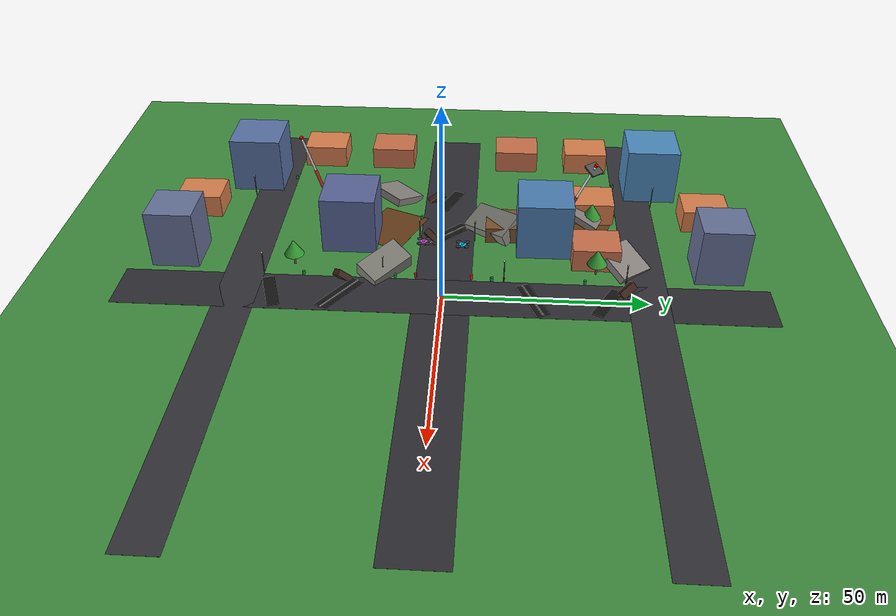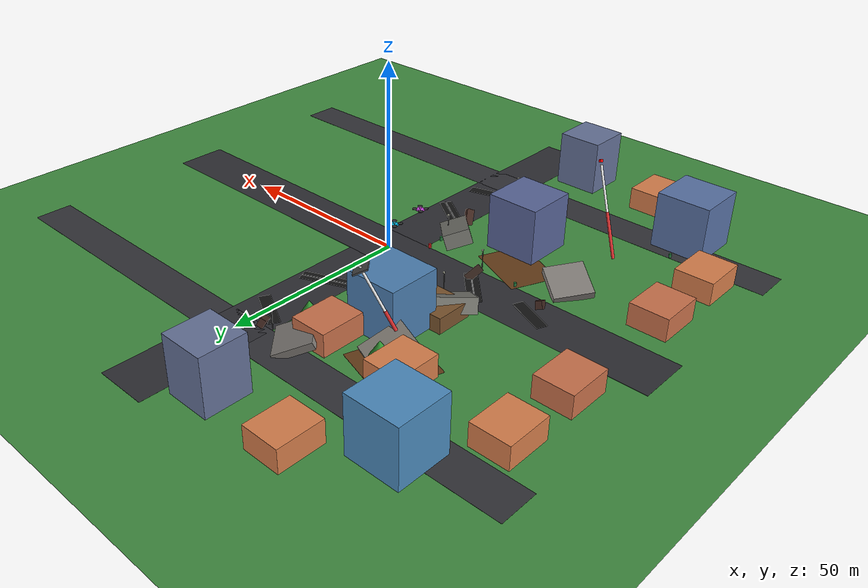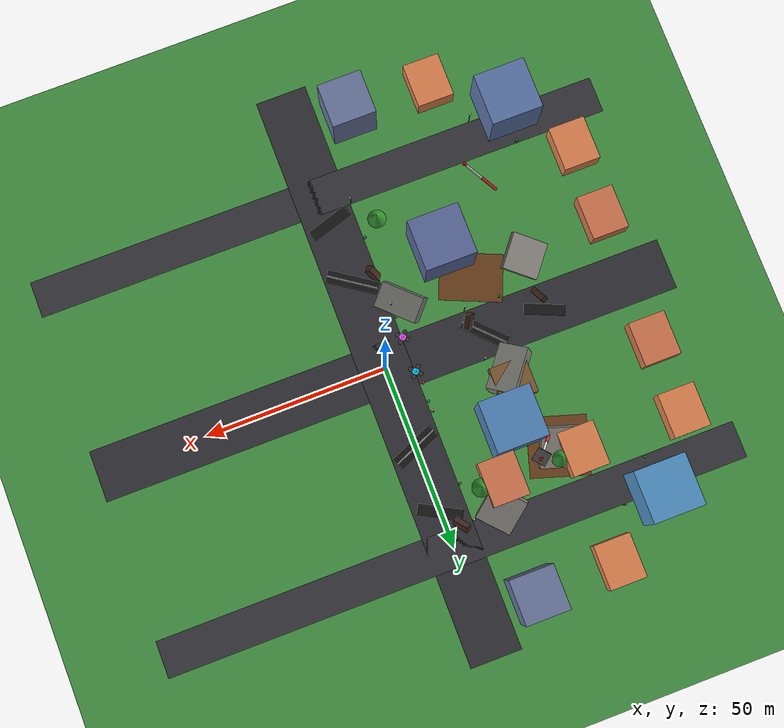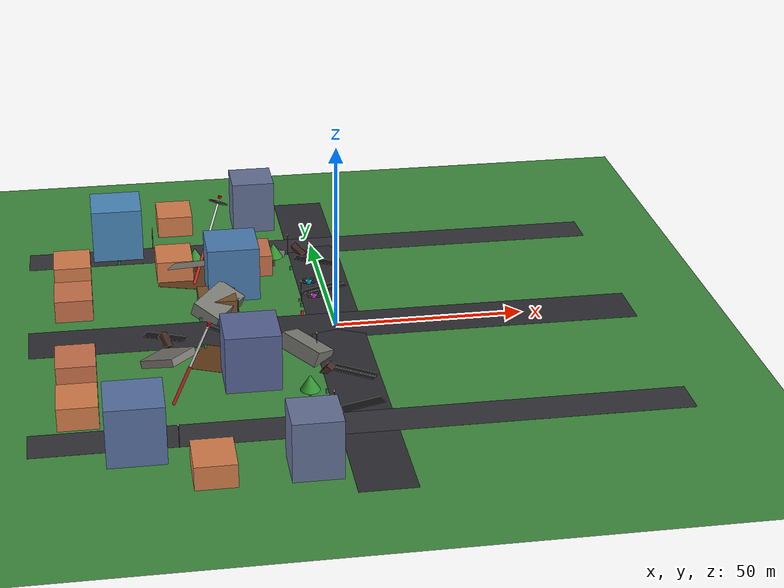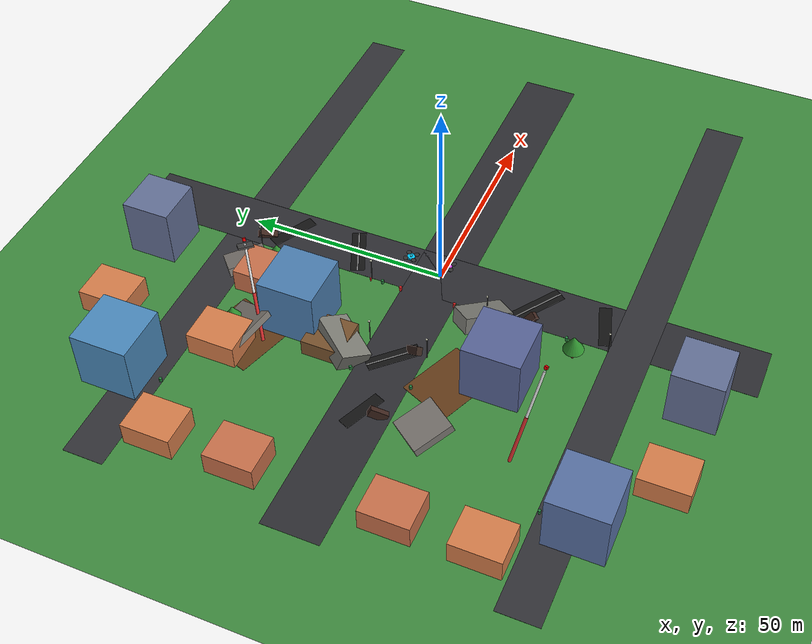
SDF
<sdf version="1.8">
 <world name="city_earthquake_fire_world">
  <model name="city_ground">
   <static>true</static>
   <link name="link">
    <collision name="collision">
     <geometry><plane><normal>0 0 1</normal><size>180 180</size></plane></geometry>
    </collision>
    <visual name="visual">
     <geometry><plane><normal>0 0 1</normal><size>180 180</size></plane></geometry>
     <material><ambient>0.2 0.45 0.2 1</ambient><diffuse>0.25 0.55 0.25 1</diffuse></material>
    </visual>
   </link>
  </model>
  <model name="main_avenue_ns">
   <static>true</static>
   <pose>0 0 0.01 0 0 0</pose>
   <link name="link">
    <visual name="visual">
     <geometry><box><size>14 160 0.02</size></box></geometry>
     <material><ambient>0.12 0.12 0.14 1</ambient><diffuse>0.18 0.18 0.2 1</diffuse></material>
    </visual>
   </link>
  </model>
  <model name="main_avenue_ew">
   <static>true</static>
   <pose>0 0 0.01 0 0 1.57</pose>
   <link name="link">
    <visual name="visual">
     <geometry><box><size>14 160 0.02</size></box></geometry>
     <material><ambient>0.12 0.12 0.14 1</ambient><diffuse>0.18 0.18 0.2 1</diffuse></material>
    </visual>
   </link>
  </model>
  <model name="ring_lane_north">
   <static>true</static>
   <pose>0 50 0.01 0 0 1.57</pose>
   <link name="link">
    <visual name="visual">
     <geometry><box><size>10 160 0.02</size></box></geometry>
     <material><ambient>0.14 0.14 0.15 1</ambient><diffuse>0.2 0.2 0.22 1</diffuse></material>
    </visual>
   </link>
  </model>
  <model name="ring_lane_south">
   <static>true</static>
   <pose>0 -50 0.01 0 0 1.57</pose>
   <link name="link">
    <visual name="visual">
     <geometry><box><size>10 160 0.02</size></box></geometry>
     <material><ambient>0.14 0.14 0.15 1</ambient><diffuse>0.2 0.2 0.22 1</diffuse></material>
    </visual>
   </link>
  </model>
  <model name="road_crack_north_1">
   <static>true</static>
   <pose>0 22 0.04 0 0 0.4</pose>
   <link name="link">
    <visual name="crack">
     <geometry><box><size>13 3.5 0.05</size></box></geometry>
     <material><ambient>0.05 0.05 0.05 1</ambient><diffuse>0.08 0.08 0.08 1</diffuse></material>
    </visual>
    <visual name="rubble_edge">
     <pose>0 0 0.04 0 0 0</pose>
     <geometry><box><size>13.2 0.4 0.08</size></box></geometry>
     <material><ambient>0.4 0.4 0.4 1</ambient><diffuse>0.5 0.5 0.5 1</diffuse></material>
    </visual>
   </link>
  </model>
  <model name="road_crack_north_2">
   <static>true</static>
   <pose>0 40 0.04 0 0 -0.5</pose>
   <link name="link">
    <visual name="crack">
     <geometry><box><size>12 3.0 0.05</size></box></geometry>
     <material><ambient>0.05 0.05 0.05 1</ambient><diffuse>0.08 0.08 0.08 1</diffuse></material>
    </visual>
   </link>
  </model>
  <model name="road_crack_south_1">
   <static>true</static>
   <pose>0 -25 0.04 0 0 -0.6</pose>
   <link name="link">
    <visual name="crack">
     <geometry><box><size>14 3.5 0.05</size></box></geometry>
     <material><ambient>0.05 0.05 0.05 1</ambient><diffuse>0.08 0.08 0.08 1</diffuse></material>
    </visual>
    <visual name="rubble_edge">
     <pose>0 0 0.04 0 0 0</pose>
     <geometry><box><size>14.2 0.4 0.08</size></box></geometry>
     <material><ambient>0.4 0.4 0.4 1</ambient><diffuse>0.5 0.5 0.5 1</diffuse></material>
    </visual>
   </link>
  </model>
  <model name="road_crack_south_2">
   <static>true</static>
   <pose>0 -42 0.04 0 0 0.3</pose>
   <link name="link">
    <visual name="crack">
     <geometry><box><size>12 3.0 0.05</size></box></geometry>
     <material><ambient>0.05 0.05 0.05 1</ambient><diffuse>0.08 0.08 0.08 1</diffuse></material>
    </visual>
   </link>
  </model>
  <model name="road_crack_west_1">
   <static>true</static>
   <pose>-28 0 0.04 0 0 -0.8</pose>
   <link name="link">
    <visual name="crack">
     <geometry><box><size>13 3.5 0.05</size></box></geometry>
     <material><ambient>0.05 0.05 0.05 1</ambient><diffuse>0.08 0.08 0.08 1</diffuse></material>
    </visual>
    <visual name="rubble_edge">
     <pose>0 0 0.04 0 0 0</pose>
     <geometry><box><size>13.2 0.4 0.08</size></box></geometry>
     <material><ambient>0.4 0.4 0.4 1</ambient><diffuse>0.5 0.5 0.5 1</diffuse></material>
    </visual>
   </link>
  </model>
  <model name="road_crack_west_2">
   <static>true</static>
   <pose>-45 0 0.04 0 0 -0.4</pose>
   <link name="link">
    <visual name="crack">
     <geometry><box><size>11 3.0 0.05</size></box></geometry>
     <material><ambient>0.05 0.05 0.05 1</ambient><diffuse>0.08 0.08 0.08 1</diffuse></material>
    </visual>
   </link>
  </model>
  <model name="mud_patch_3">
   <static>true</static>
   <pose>-35 35 0.02 0 0 -0.3</pose>
   <link name="link">
    <visual name="mud">
     <geometry><box><size>16 16 0.03</size></box></geometry>
     <material><ambient>0.3 0.18 0.08 1</ambient><diffuse>0.4 0.24 0.1 1</diffuse></material>
    </visual>
   </link>
  </model>
  <model name="mud_patch_5">
   <static>true</static>
   <pose>-30 -15 0.02 0 0 -0.4</pose>
   <link name="link">
    <visual name="mud">
     <geometry><box><size>17 13 0.03</size></box></geometry>
     <material><ambient>0.3 0.18 0.08 1</ambient><diffuse>0.4 0.24 0.1 1</diffuse></material>
    </visual>
   </link>
  </model>
  <model name="ugv_charging_pad_beta">
   <static>true</static>
   <pose>-25 -20 1.55 0 0 1.57</pose>
   <link name="link">
    <visual name="charging_pad">
     <geometry><box><size>2.8 2.8 0.15</size></box></geometry>
     <material>
      <ambient>0.1 0.8 0.2 1</ambient>
      <diffuse>0.2 0.9 0.3 1</diffuse>
      <emissive>0.1 0.9 0.2 1</emissive>
     </material>
    </visual>
   </link>
  </model>
  <model name="collapsed_building_2">
   <static>true</static>
   <pose>-35 35 2.5 -0.2 0.4 1.2</pose>
   <link name="link">
    <visual name="slab1">
     <pose>0 0 1 0 0 0</pose>
     <geometry><box><size>11 11 1.6</size></box></geometry>
     <material><ambient>0.4 0.38 0.35 1</ambient><diffuse>0.5 0.48 0.45 1</diffuse></material>
    </visual>
   </link>
  </model>
  <model name="collapsed_building_4">
   <static>true</static>
   <pose>-45 -15 2 -0.3 0.1 0.9</pose>
   <link name="link">
    <visual name="slab">
     <geometry><box><size>10 10 2</size></box></geometry>
     <material><ambient>0.42 0.4 0.38 1</ambient><diffuse>0.52 0.5 0.48 1</diffuse></material>
    </visual>
   </link>
  </model>
  <model name="collapsed_building_6">
   <static>true</static>
   <pose>-15 45 2 -0.1 0.4 0.7</pose>
   <link name="link">
    <visual name="slab">
     <geometry><box><size>10 10 2</size></box></geometry>
     <material><ambient>0.42 0.4 0.38 1</ambient><diffuse>0.52 0.5 0.48 1</diffuse></material>
    </visual>
   </link>
  </model>
  <model name="suv_wreck_2">
   <static>true</static>
   <pose>-6 -25 1.0 -0.5 0.8 2.1</pose>
   <link name="link">
    <visual name="chassis">
     <geometry><box><size>4.5 2.0 1.6</size></box></geometry>
     <material><ambient>0.2 0.12 0.1 1</ambient><diffuse>0.25 0.15 0.12 1</diffuse></material>
    </visual>
   </link>
  </model>
  <model name="suv_wreck_4">
   <static>true</static>
   <pose>-25 -4 1.0 2.2 0.6 1.1</pose>
   <link name="link">
    <visual name="chassis">
     <geometry><box><size>4.5 2.0 1.6</size></box></geometry>
     <material><ambient>0.18 0.12 0.1 1</ambient><diffuse>0.22 0.15 0.12 1</diffuse></material>
    </visual>
   </link>
  </model>
  <model name="suv_wreck_6">
   <static>true</static>
   <pose>-45 -4 0.9 -1.8 0.5 -1.2</pose>
   <link name="link">
    <visual name="chassis">
     <geometry><box><size>4.5 2.0 1.6</size></box></geometry>
     <material><ambient>0.2 0.12 0.1 1</ambient><diffuse>0.25 0.15 0.12 1</diffuse></material>
    </visual>
   </link>
  </model>
  <model name="suv_wreck_8">
   <static>true</static>
   <pose>-4 45 1.0 2.1 0.4 -0.9</pose>
   <link name="link">
    <visual name="chassis">
     <geometry><box><size>4.5 2.0 1.6</size></box></geometry>
     <material><ambient>0.2 0.12 0.1 1</ambient><diffuse>0.25 0.15 0.12 1</diffuse></material>
    </visual>
   </link>
  </model>
  <model name="rubble_mound_2">
   <static>true</static>
   <pose>-10 -15 2.0 -0.3 0.2 -0.8</pose>
   <link name="link">
    <visual name="visual">
     <geometry><box><size>12 7 4</size></box></geometry>
     <material><ambient>0.38 0.38 0.35 1</ambient><diffuse>0.48 0.48 0.45 1</diffuse></material>
    </visual>
   </link>
  </model>
  <model name="rubble_mound_4">
   <static>true</static>
   <pose>-30 12 2.2 0.4 -0.1 0.9</pose>
   <link name="link">
    <visual name="visual">
     <geometry><box><size>13 8 4</size></box></geometry>
     <material><ambient>0.38 0.38 0.35 1</ambient><diffuse>0.48 0.48 0.45 1</diffuse></material>
    </visual>
   </link>
  </model>
  <model name="dirt_mound_2">
   <static>true</static>
   <pose>-30 15 1.5 0 0 0</pose>
   <link name="link">
    <visual name="visual">
     <geometry><box><size>10 10 5</size></box></geometry>
     <material><ambient>0.38 0.26 0.12 1</ambient><diffuse>0.48 0.33 0.18 1</diffuse></material>
    </visual>
   </link>
  </model>
  <model name="broken_cell_tower_2">
   <static>true</static>
   <pose>-35 30 0.0 0 0.45 0.7</pose>
   <link name="link">
    <visual name="mast_lower">
     <pose>0 0 6 0 0 0</pose>
     <geometry><cylinder><radius>0.4</radius><length>12</length></cylinder></geometry>
     <material><ambient>0.8 0.15 0.15 1</ambient><diffuse>0.9 0.2 0.2 1</diffuse></material>
    </visual>
    <visual name="mast_upper">
     <pose>0 0 18 0 0 0</pose>
     <geometry><cylinder><radius>0.3</radius><length>12</length></cylinder></geometry>
     <material><ambient>0.85 0.85 0.85 1</ambient><diffuse>0.95 0.95 0.95 1</diffuse></material>
    </visual>
    <visual name="antenna_boom">
     <pose>0 0 23.5 0 0 0</pose>
     <geometry><box><size>3.6 3.6 0.4</size></box></geometry>
     <material><ambient>0.2 0.2 0.2 1</ambient><diffuse>0.3 0.3 0.3 1</diffuse></material>
    </visual>
    <visual name="hazard_beacon">
     <pose>0 0 25.0 0 0 0</pose>
     <geometry><box><size>0.7 0.7 0.7</size></box></geometry>
     <material>
      <ambient>1.0 0.0 0.0 1</ambient>
      <diffuse>1.0 0.0 0.0 1</diffuse>
      <emissive>1.0 0.0 0.0 1</emissive>
     </material>
    </visual>
   </link>
  </model>
  <model name="broken_cell_tower_4">
   <static>true</static>
   <pose>-45 -35 0.0 0 0.4 -0.4</pose>
   <link name="link">
    <visual name="mast_lower">
     <pose>0 0 6 0 0 0</pose>
     <geometry><cylinder><radius>0.4</radius><length>12</length></cylinder></geometry>
     <material><ambient>0.8 0.15 0.15 1</ambient><diffuse>0.9 0.2 0.2 1</diffuse></material>
    </visual>
    <visual name="mast_upper">
     <pose>0 0 18 0 0 0</pose>
     <geometry><cylinder><radius>0.3</radius><length>12</length></cylinder></geometry>
     <material><ambient>0.85 0.85 0.85 1</ambient><diffuse>0.95 0.95 0.95 1</diffuse></material>
    </visual>
    <visual name="hazard_beacon">
     <pose>0 0 25.0 0 0 0</pose>
     <geometry><box><size>0.7 0.7 0.7</size></box></geometry>
     <material>
      <ambient>1.0 0.0 0.0 1</ambient>
      <diffuse>1.0 0.0 0.0 1</diffuse>
      <emissive>1.0 0.0 0.0 1</emissive>
     </material>
    </visual>
   </link>
  </model>
  <model name="tree_3">
   <static>true</static>
   <pose>-12 38 0 0 0 0</pose>
   <link name="link">
    <visual name="trunk">
     <pose>0 0 2 0 0 0</pose>
     <geometry><cylinder><radius>0.25</radius><length>4</length></cylinder></geometry>
     <material><ambient>0.4 0.25 0.1 1</ambient><diffuse>0.5 0.3 0.15 1</diffuse></material>
    </visual>
    <visual name="canopy">
     <pose>0 0 5 0 0 0</pose>
     <geometry><cone><radius>2.5</radius><length>4</length></cone></geometry>
     <material><ambient>0.15 0.5 0.15 1</ambient><diffuse>0.2 0.6 0.2 1</diffuse></material>
    </visual>
   </link>
  </model>
  <model name="tree_4">
   <static>true</static>
   <pose>-34 38 0 0 0 0</pose>
   <link name="link">
    <visual name="trunk">
     <pose>0 0 2 0 0 0</pose>
     <geometry><cylinder><radius>0.25</radius><length>4</length></cylinder></geometry>
     <material><ambient>0.4 0.25 0.1 1</ambient><diffuse>0.5 0.3 0.15 1</diffuse></material>
    </visual>
    <visual name="canopy">
     <pose>0 0 5 0 0 0</pose>
     <geometry><cone><radius>2.5</radius><length>4</length></cone></geometry>
     <material><ambient>0.15 0.5 0.15 1</ambient><diffuse>0.2 0.6 0.2 1</diffuse></material>
    </visual>
   </link>
  </model>
  <model name="tree_6">
   <static>true</static>
   <pose>-12 -38 0 0 0 0</pose>
   <link name="link">
    <visual name="trunk">
     <pose>0 0 2 0 0 0</pose>
     <geometry><cylinder><radius>0.25</radius><length>4</length></cylinder></geometry>
     <material><ambient>0.4 0.25 0.1 1</ambient><diffuse>0.5 0.3 0.15 1</diffuse></material>
    </visual>
    <visual name="canopy">
     <pose>0 0 5 0 0 0</pose>
     <geometry><cone><radius>2.5</radius><length>4</length></cone></geometry>
     <material><ambient>0.15 0.5 0.15 1</ambient><diffuse>0.2 0.6 0.2 1</diffuse></material>
    </visual>
   </link>
  </model>
  <model name="bench_2">
   <static>true</static>
   <pose>-18 42 0.4 0 0 0</pose>
   <link name="link">
    <visual name="seat">
     <geometry><box><size>2.0 0.6 0.1</size></box></geometry>
     <material><ambient>0.5 0.25 0.1 1</ambient><diffuse>0.6 0.3 0.15 1</diffuse></material>
    </visual>
   </link>
  </model>
  <model name="hydrant_2">
   <static>true</static>
   <pose>-7.8 15 0.4 0 0 0</pose>
   <link name="link">
    <visual name="body">
     <geometry><cylinder><radius>0.2</radius><length>0.8</length></cylinder></geometry>
     <material><ambient>0.9 0.1 0.1 1</ambient><diffuse>1.0 0.15 0.15 1</diffuse></material>
    </visual>
   </link>
  </model>
  <model name="post_box_2">
   <static>true</static>
   <pose>-8 7 0.6 0 0 0</pose>
   <link name="link">
    <visual name="box">
     <geometry><box><size>0.6 0.6 1.2</size></box></geometry>
     <material><ambient>0.8 0.1 0.1 1</ambient><diffuse>0.9 0.15 0.15 1</diffuse></material>
    </visual>
   </link>
  </model>
  <model name="post_box_4">
   <static>true</static>
   <pose>-8 -7 0.6 0 0 0</pose>
   <link name="link">
    <visual name="box">
     <geometry><box><size>0.6 0.6 1.2</size></box></geometry>
     <material><ambient>0.8 0.1 0.1 1</ambient><diffuse>0.9 0.15 0.15 1</diffuse></material>
    </visual>
   </link>
  </model>
  <model name="street_lamp_2">
   <static>true</static>
   <pose>-7.2 15 3.0 0 0 0</pose>
   <link name="link">
    <visual name="pole">
     <geometry><cylinder><radius>0.1</radius><length>6.0</length></cylinder></geometry>
     <material><ambient>0.3 0.3 0.3 1</ambient><diffuse>0.4 0.4 0.4 1</diffuse></material>
    </visual>
    <visual name="lamp">
     <pose>0 0 3.1 0 0 0</pose>
     <geometry><box><size>0.4 0.4 0.3</size></box></geometry>
     <material>
      <ambient>1.0 1.0 0.8 1</ambient>
      <diffuse>1.0 1.0 0.9 1</diffuse>
      <emissive>1.0 1.0 0.8 1</emissive>
     </material>
    </visual>
   </link>
  </model>
  <model name="street_lamp_4">
   <static>true</static>
   <pose>-7.2 -15 3.0 0 0 0</pose>
   <link name="link">
    <visual name="pole">
     <geometry><cylinder><radius>0.1</radius><length>6.0</length></cylinder></geometry>
     <material><ambient>0.3 0.3 0.3 1</ambient><diffuse>0.4 0.4 0.4 1</diffuse></material>
    </visual>
    <visual name="lamp">
     <pose>0 0 3.1 0 0 0</pose>
     <geometry><box><size>0.4 0.4 0.3</size></box></geometry>
     <material>
      <ambient>1.0 1.0 0.8 1</ambient>
      <diffuse>1.0 1.0 0.9 1</diffuse>
      <emissive>1.0 1.0 0.8 1</emissive>
     </material>
    </visual>
   </link>
  </model>
  <model name="street_lamp_6">
   <static>true</static>
   <pose>-7.2 45 3.0 0 0 0</pose>
   <link name="link">
    <visual name="pole">
     <geometry><cylinder><radius>0.1</radius><length>6.0</length></cylinder></geometry>
     <material><ambient>0.3 0.3 0.3 1</ambient><diffuse>0.4 0.4 0.4 1</diffuse></material>
    </visual>
    <visual name="lamp">
     <pose>0 0 3.1 0 0 0</pose>
     <geometry><box><size>0.4 0.4 0.3</size></box></geometry>
     <material>
      <ambient>1.0 1.0 0.8 1</ambient>
      <diffuse>1.0 1.0 0.9 1</diffuse>
      <emissive>1.0 1.0 0.8 1</emissive>
     </material>
    </visual>
   </link>
  </model>
  <model name="street_lamp_8">
   <static>true</static>
   <pose>-7.2 -45 3.0 0 0 0</pose>
   <link name="link">
    <visual name="pole">
     <geometry><cylinder><radius>0.1</radius><length>6.0</length></cylinder></geometry>
     <material><ambient>0.3 0.3 0.3 1</ambient><diffuse>0.4 0.4 0.4 1</diffuse></material>
    </visual>
    <visual name="lamp">
     <pose>0 0 3.1 0 0 0</pose>
     <geometry><box><size>0.4 0.4 0.3</size></box></geometry>
     <material>
      <ambient>1.0 1.0 0.8 1</ambient>
      <diffuse>1.0 1.0 0.9 1</diffuse>
      <emissive>1.0 1.0 0.8 1</emissive>
     </material>
    </visual>
   </link>
  </model>
  <model name="street_lamp_10">
   <static>true</static>
   <pose>-25 7.2 3.0 0 0 0</pose>
   <link name="link">
    <visual name="pole">
     <geometry><cylinder><radius>0.1</radius><length>6.0</length></cylinder></geometry>
     <material><ambient>0.3 0.3 0.3 1</ambient><diffuse>0.4 0.4 0.4 1</diffuse></material>
    </visual>
    <visual name="lamp">
     <pose>0 0 3.1 0 0 0</pose>
     <geometry><box><size>0.4 0.4 0.3</size></box></geometry>
     <material>
      <ambient>1.0 1.0 0.8 1</ambient>
      <diffuse>1.0 1.0 0.9 1</diffuse>
      <emissive>1.0 1.0 0.8 1</emissive>
     </material>
    </visual>
   </link>
  </model>
  <model name="street_lamp_12">
   <static>true</static>
   <pose>-25 -7.2 3.0 0 0 0</pose>
   <link name="link">
    <visual name="pole">
     <geometry><cylinder><radius>0.1</radius><length>6.0</length></cylinder></geometry>
     <material><ambient>0.3 0.3 0.3 1</ambient><diffuse>0.4 0.4 0.4 1</diffuse></material>
    </visual>
    <visual name="lamp">
     <pose>0 0 3.1 0 0 0</pose>
     <geometry><box><size>0.4 0.4 0.3</size></box></geometry>
     <material>
      <ambient>1.0 1.0 0.8 1</ambient>
      <diffuse>1.0 1.0 0.9 1</diffuse>
      <emissive>1.0 1.0 0.8 1</emissive>
     </material>
    </visual>
   </link>
  </model>
  <model name="street_lamp_14">
   <static>true</static>
   <pose>-45 55.2 3.0 0 0 0</pose>
   <link name="link">
    <visual name="pole">
     <geometry><cylinder><radius>0.1</radius><length>6.0</length></cylinder></geometry>
     <material><ambient>0.3 0.3 0.3 1</ambient><diffuse>0.4 0.4 0.4 1</diffuse></material>
    </visual>
    <visual name="lamp">
     <pose>0 0 3.1 0 0 0</pose>
     <geometry><box><size>0.4 0.4 0.3</size></box></geometry>
     <material>
      <ambient>1.0 1.0 0.8 1</ambient>
      <diffuse>1.0 1.0 0.9 1</diffuse>
      <emissive>1.0 1.0 0.8 1</emissive>
     </material>
    </visual>
   </link>
  </model>
  <model name="street_lamp_16">
   <static>true</static>
   <pose>-45 -55.2 3.0 0 0 0</pose>
   <link name="link">
    <visual name="pole">
     <geometry><cylinder><radius>0.1</radius><length>6.0</length></cylinder></geometry>
     <material><ambient>0.3 0.3 0.3 1</ambient><diffuse>0.4 0.4 0.4 1</diffuse></material>
    </visual>
    <visual name="lamp">
     <pose>0 0 3.1 0 0 0</pose>
     <geometry><box><size>0.4 0.4 0.3</size></box></geometry>
     <material>
      <ambient>1.0 1.0 0.8 1</ambient>
      <diffuse>1.0 1.0 0.9 1</diffuse>
      <emissive>1.0 1.0 0.8 1</emissive>
     </material>
    </visual>
   </link>
  </model>
  <model name="dustbin_2">
   <static>true</static>
   <pose>-7.5 12 0.5 0 0 0</pose>
   <link name="link">
    <visual name="bin">
     <geometry><cylinder><radius>0.35</radius><length>1.0</length></cylinder></geometry>
     <material><ambient>0.1 0.4 0.2 1</ambient><diffuse>0.15 0.5 0.25 1</diffuse></material>
    </visual>
   </link>
  </model>
  <model name="dustbin_4">
   <static>true</static>
   <pose>-7.5 -12 0.5 0 0 0</pose>
   <link name="link">
    <visual name="bin">
     <geometry><cylinder><radius>0.35</radius><length>1.0</length></cylinder></geometry>
     <material><ambient>0.1 0.4 0.2 1</ambient><diffuse>0.15 0.5 0.25 1</diffuse></material>
    </visual>
   </link>
  </model>
  <model name="dustbin_6">
   <static>true</static>
   <pose>-7.5 35 0.5 0 0 0</pose>
   <link name="link">
    <visual name="bin">
     <geometry><cylinder><radius>0.35</radius><length>1.0</length></cylinder></geometry>
     <material><ambient>0.1 0.4 0.2 1</ambient><diffuse>0.15 0.5 0.25 1</diffuse></material>
    </visual>
   </link>
  </model>
  <model name="dustbin_8">
   <static>true</static>
   <pose>-7.5 -35 0.5 0 0 0</pose>
   <link name="link">
    <visual name="bin">
     <geometry><cylinder><radius>0.35</radius><length>1.0</length></cylinder></geometry>
     <material><ambient>0.1 0.4 0.2 1</ambient><diffuse>0.15 0.5 0.25 1</diffuse></material>
    </visual>
   </link>
  </model>
  <model name="dustbin_10">
   <static>true</static>
   <pose>-35 7.5 0.5 0 0 0</pose>
   <link name="link">
    <visual name="bin">
     <geometry><cylinder><radius>0.35</radius><length>1.0</length></cylinder></geometry>
     <material><ambient>0.1 0.4 0.2 1</ambient><diffuse>0.15 0.5 0.25 1</diffuse></material>
    </visual>
   </link>
  </model>
  <model name="dustbin_12">
   <static>true</static>
   <pose>-35 -7.5 0.5 0 0 0</pose>
   <link name="link">
    <visual name="bin">
     <geometry><cylinder><radius>0.35</radius><length>1.0</length></cylinder></geometry>
     <material><ambient>0.1 0.4 0.2 1</ambient><diffuse>0.15 0.5 0.25 1</diffuse></material>
    </visual>
   </link>
  </model>
  <model name="dustbin_14">
   <static>true</static>
   <pose>-55 45.5 0.5 0 0 0</pose>
   <link name="link">
    <visual name="bin">
     <geometry><cylinder><radius>0.35</radius><length>1.0</length></cylinder></geometry>
     <material><ambient>0.1 0.4 0.2 1</ambient><diffuse>0.15 0.5 0.25 1</diffuse></material>
    </visual>
   </link>
  </model>
  <model name="dustbin_16">
   <static>true</static>
   <pose>-55 -45.5 0.5 0 0 0</pose>
   <link name="link">
    <visual name="bin">
     <geometry><cylinder><radius>0.35</radius><length>1.0</length></cylinder></geometry>
     <material><ambient>0.1 0.4 0.2 1</ambient><diffuse>0.15 0.5 0.25 1</diffuse></material>
    </visual>
   </link>
  </model>
  <model name="office_2">
   <static>true</static>
   <pose>-25 25 7.5 0 0 0</pose>
   <link name="link">
    <visual name="facade">
     <geometry><box><size>14 14 15</size></box></geometry>
     <material><ambient>0.2 0.35 0.5 1</ambient><diffuse>0.3 0.5 0.7 1</diffuse></material>
    </visual>
   </link>
  </model>
  <model name="office_4">
   <static>true</static>
   <pose>-25 -25 7.5 0 0 0</pose>
   <link name="link">
    <visual name="facade">
     <geometry><box><size>14 14 15</size></box></geometry>
     <material><ambient>0.25 0.3 0.45 1</ambient><diffuse>0.35 0.4 0.6 1</diffuse></material>
    </visual>
   </link>
  </model>
  <model name="office_6">
   <static>true</static>
   <pose>-55 55 7.5 0 0 0</pose>
   <link name="link">
    <visual name="facade">
     <geometry><box><size>14 14 15</size></box></geometry>
     <material><ambient>0.2 0.4 0.55 1</ambient><diffuse>0.3 0.55 0.75 1</diffuse></material>
    </visual>
   </link>
  </model>
  <model name="office_8">
   <static>true</static>
   <pose>-55 -55 7.5 0 0 0</pose>
   <link name="link">
    <visual name="facade">
     <geometry><box><size>14 14 15</size></box></geometry>
     <material><ambient>0.25 0.35 0.5 1</ambient><diffuse>0.35 0.45 0.65 1</diffuse></material>
    </visual>
   </link>
  </model>
  <model name="office_10">
   <static>true</static>
   <pose>-15 68 7.5 0 0 0</pose>
   <link name="link">
    <visual name="facade">
     <geometry><box><size>12 12 15</size></box></geometry>
     <material><ambient>0.3 0.35 0.45 1</ambient><diffuse>0.4 0.45 0.6 1</diffuse></material>
    </visual>
   </link>
  </model>
  <model name="office_12">
   <static>true</static>
   <pose>-15 -68 7.5 0 0 0</pose>
   <link name="link">
    <visual name="facade">
     <geometry><box><size>12 12 15</size></box></geometry>
     <material><ambient>0.3 0.35 0.45 1</ambient><diffuse>0.4 0.45 0.6 1</diffuse></material>
    </visual>
   </link>
  </model>
  <model name="house_3">
   <static>true</static>
   <pose>-18 38 3 0 0 0</pose>
   <link name="link">
    <visual name="walls">
     <geometry><box><size>10 12 6</size></box></geometry>
     <material><ambient>0.7 0.35 0.25 1</ambient><diffuse>0.8 0.45 0.3 1</diffuse></material>
    </visual>
   </link>
  </model>
  <model name="house_4">
   <static>true</static>
   <pose>-40 38 3 0 0 0</pose>
   <link name="link">
    <visual name="walls">
     <geometry><box><size>10 12 6</size></box></geometry>
     <material><ambient>0.75 0.4 0.25 1</ambient><diffuse>0.85 0.5 0.3 1</diffuse></material>
    </visual>
   </link>
  </model>
  <model name="house_9">
   <static>true</static>
   <pose>-68 18 3 0 0 0</pose>
   <link name="link">
    <visual name="walls">
     <geometry><box><size>10 12 6</size></box></geometry>
     <material><ambient>0.7 0.35 0.25 1</ambient><diffuse>0.8 0.45 0.3 1</diffuse></material>
    </visual>
   </link>
  </model>
  <model name="house_10">
   <static>true</static>
   <pose>-68 38 3 0 0 0</pose>
   <link name="link">
    <visual name="walls">
     <geometry><box><size>10 12 6</size></box></geometry>
     <material><ambient>0.75 0.4 0.25 1</ambient><diffuse>0.85 0.5 0.3 1</diffuse></material>
    </visual>
   </link>
  </model>
  <model name="house_13">
   <static>true</static>
   <pose>-68 -18 3 0 0 0</pose>
   <link name="link">
    <visual name="walls">
     <geometry><box><size>10 12 6</size></box></geometry>
     <material><ambient>0.7 0.35 0.25 1</ambient><diffuse>0.8 0.45 0.3 1</diffuse></material>
    </visual>
   </link>
  </model>
  <model name="house_14">
   <static>true</static>
   <pose>-68 -38 3 0 0 0</pose>
   <link name="link">
    <visual name="walls">
     <geometry><box><size>10 12 6</size></box></geometry>
     <material><ambient>0.75 0.4 0.25 1</ambient><diffuse>0.85 0.5 0.3 1</diffuse></material>
    </visual>
   </link>
  </model>
  <model name="house_16">
   <static>true</static>
   <pose>-38 68 3 0 0 0</pose>
   <link name="link">
    <visual name="walls">
     <geometry><box><size>10 12 6</size></box></geometry>
     <material><ambient>0.75 0.4 0.25 1</ambient><diffuse>0.85 0.5 0.3 1</diffuse></material>
    </visual>
   </link>
  </model>
  <model name="house_18">
   <static>true</static>
   <pose>-38 -68 3 0 0 0</pose>
   <link name="link">
    <visual name="walls">
     <geometry><box><size>10 12 6</size></box></geometry>
     <material><ambient>0.75 0.4 0.25 1</ambient><diffuse>0.85 0.5 0.3 1</diffuse></material>
    </visual>
   </link>
  </model>
  <model name="UAV_3">
   <static>true</static>
   <pose>-6.5 4.7 11.0 0 0 0</pose>
   <link name="link">
    <visual name="chassis">
     <geometry><box><size>1.8 1.8 0.4</size></box></geometry>
     <material>
      <ambient>0.0 0.7 1.0 1</ambient>
      <diffuse>0.0 0.8 1.0 1</diffuse>
      <emissive>0.0 0.8 1.0 1</emissive>
     </material>
    </visual>
    <visual name="rotor1">
     <pose>1.0 1.0 0.2 0 0 0</pose>
     <geometry><cylinder><radius>0.6</radius><length>0.1</length></cylinder></geometry>
     <material><ambient>0.1 0.1 0.1 1</ambient><diffuse>0.2 0.2 0.2 1</diffuse></material>
    </visual>
    <visual name="rotor2">
     <pose>-1.0 1.0 0.2 0 0 0</pose>
     <geometry><cylinder><radius>0.6</radius><length>0.1</length></cylinder></geometry>
     <material><ambient>0.1 0.1 0.1 1</ambient><diffuse>0.2 0.2 0.2 1</diffuse></material>
    </visual>
    <visual name="rotor3">
     <pose>1.0 -1.0 0.2 0 0 0</pose>
     <geometry><cylinder><radius>0.6</radius><length>0.1</length></cylinder></geometry>
     <material><ambient>0.1 0.1 0.1 1</ambient><diffuse>0.2 0.2 0.2 1</diffuse></material>
    </visual>
    <visual name="rotor4">
     <pose>-1.0 -1.0 0.2 0 0 0</pose>
     <geometry><cylinder><radius>0.6</radius><length>0.1</length></cylinder></geometry>
     <material><ambient>0.1 0.1 0.1 1</ambient><diffuse>0.2 0.2 0.2 1</diffuse></material>
    </visual>
    <visual name="beacon">
     <pose>0 0 0.3 0 0 0</pose>
     <geometry><box><size>0.5 0.5 0.5</size></box></geometry>
     <material>
      <ambient>0.0 0.8 1.0 1</ambient>
      <diffuse>0.2 0.9 1.0 1</diffuse>
      <emissive>0.2 0.9 1.0 1</emissive>
     </material>
    </visual>
   </link>
  </model>
  <model name="UAV_4">
   <static>true</static>
   <pose>-6.5 -4.7 11.5 0 0 0</pose>
   <link name="link">
    <visual name="chassis">
     <geometry><box><size>1.8 1.8 0.4</size></box></geometry>
     <material>
      <ambient>0.8 0.2 1.0 1</ambient>
      <diffuse>0.9 0.3 1.0 1</diffuse>
      <emissive>0.8 0.2 1.0 1</emissive>
     </material>
    </visual>
    <visual name="rotor1">
     <pose>1.0 1.0 0.2 0 0 0</pose>
     <geometry><cylinder><radius>0.6</radius><length>0.1</length></cylinder></geometry>
     <material><ambient>0.1 0.1 0.1 1</ambient><diffuse>0.2 0.2 0.2 1</diffuse></material>
    </visual>
    <visual name="rotor2">
     <pose>-1.0 1.0 0.2 0 0 0</pose>
     <geometry><cylinder><radius>0.6</radius><length>0.1</length></cylinder></geometry>
     <material><ambient>0.1 0.1 0.1 1</ambient><diffuse>0.2 0.2 0.2 1</diffuse></material>
    </visual>
    <visual name="rotor3">
     <pose>1.0 -1.0 0.2 0 0 0</pose>
     <geometry><cylinder><radius>0.6</radius><length>0.1</length></cylinder></geometry>
     <material><ambient>0.1 0.1 0.1 1</ambient><diffuse>0.2 0.2 0.2 1</diffuse></material>
    </visual>
    <visual name="rotor4">
     <pose>-1.0 -1.0 0.2 0 0 0</pose>
     <geometry><cylinder><radius>0.6</radius><length>0.1</length></cylinder></geometry>
     <material><ambient>0.1 0.1 0.1 1</ambient><diffuse>0.2 0.2 0.2 1</diffuse></material>
    </visual>
    <visual name="beacon">
     <pose>0 0 0.3 0 0 0</pose>
     <geometry><box><size>0.5 0.5 0.5</size></box></geometry>
     <material>
      <ambient>0.9 0.3 1.0 1</ambient>
      <diffuse>1.0 0.4 1.0 1</diffuse>
      <emissive>1.0 0.4 1.0 1</emissive>
     </material>
    </visual>
   </link>
  </model>
 </world>
</sdf>
